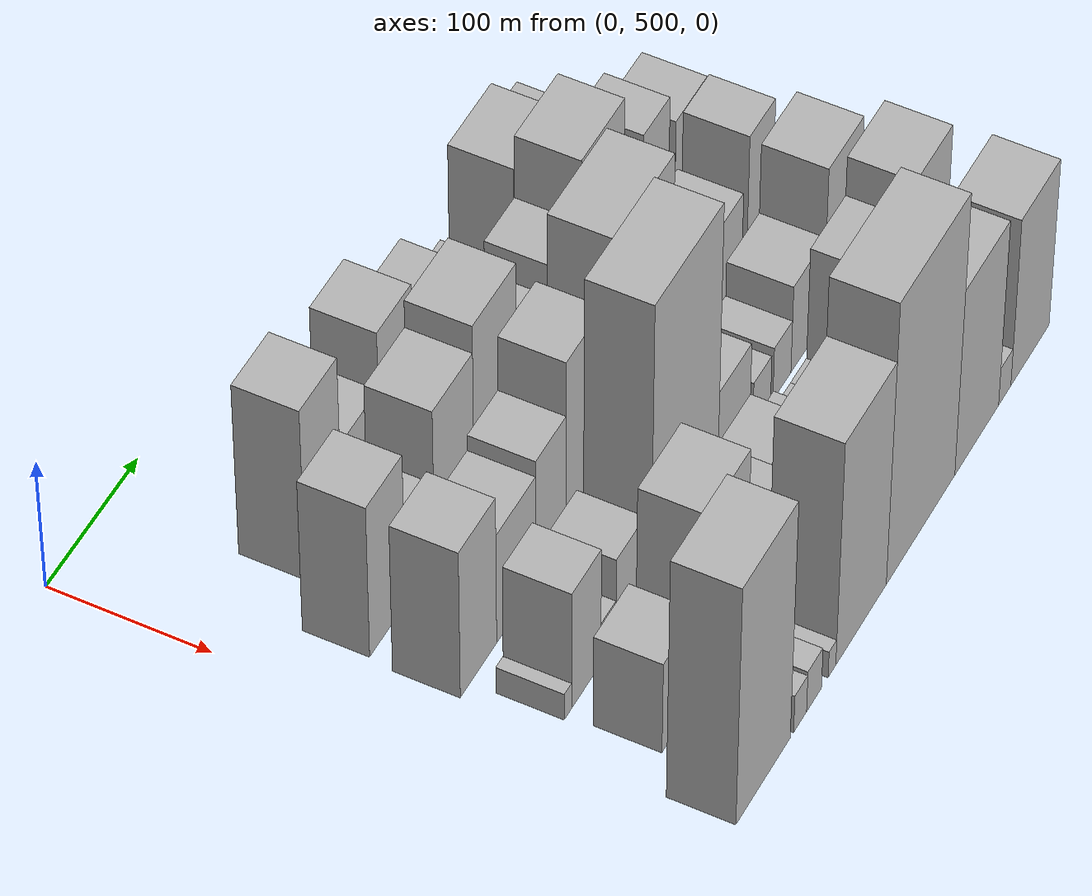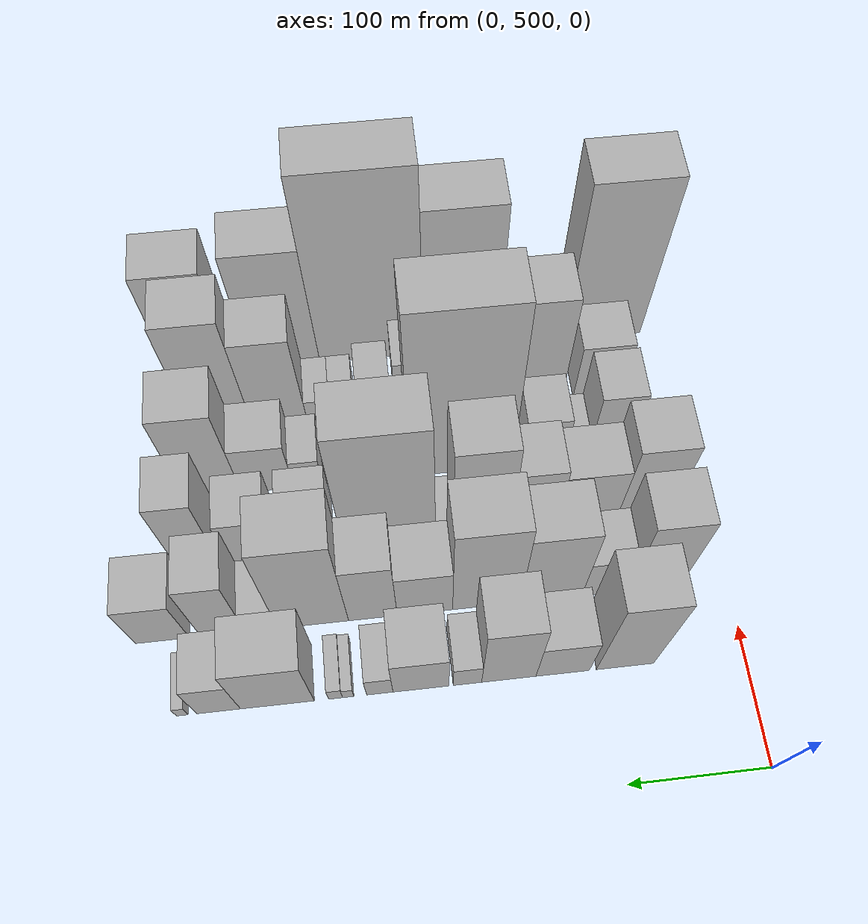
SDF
<sdf version="1.6">
 <world name="default">
  <model name="building_39">
   <static>1</static>
   <pose>100.0000 586.6862 0 0.000000 0.000000 0.000000</pose>
   <link name="link">
    <pose>0 0 67.50 0 0 0</pose>
    <collision name="collision"><geometry><box><size>40.0000 41.3181 135.0000</size></box></geometry></collision>
    <visual name="visual">
     <cast_shadows>0</cast_shadows>
     <geometry><box><size>40.0000 41.3181 135.0000</size></box></geometry>
     <material>
      <script>
       <uri>model://HANNAS_wall/materials/scripts</uri>
       <uri>model://HANNAS_wall/materials/textures</uri>
       <name>vrc/HANNAS_wall</name>
      </script>
     </material>
    </visual>
   </link>
  </model>
  <model name="building_40">
   <static>1</static>
   <pose>100.0000 631.5198 0 0.000000 0.000000 0.000000</pose>
   <link name="link">
    <pose>0 0 33.00 0 0 0</pose>
    <collision name="collision"><geometry><box><size>40.0000 38.3491 66.0000</size></box></geometry></collision>
    <visual name="visual">
     <cast_shadows>0</cast_shadows>
     <geometry><box><size>40.0000 38.3491 66.0000</size></box></geometry>
     <material>
      <script>
       <uri>model://HANNAS_wall/materials/scripts</uri>
       <uri>model://HANNAS_wall/materials/textures</uri>
       <name>vrc/HANNAS_wall</name>
      </script>
     </material>
    </visual>
   </link>
  </model>
  <model name="building_41">
   <static>1</static>
   <pose>100.0000 670.0750 0 0.000000 0.000000 0.000000</pose>
   <link name="link">
    <pose>0 0 55.50 0 0 0</pose>
    <collision name="collision"><geometry><box><size>40.0000 38.7613 111.0000</size></box></geometry></collision>
    <visual name="visual">
     <cast_shadows>0</cast_shadows>
     <geometry><box><size>40.0000 38.7613 111.0000</size></box></geometry>
     <material>
      <script>
       <uri>model://HANNAS_wall/materials/scripts</uri>
       <uri>model://HANNAS_wall/materials/textures</uri>
       <name>vrc/HANNAS_wall</name>
      </script>
     </material>
    </visual>
   </link>
  </model>
  <model name="building_42">
   <static>1</static>
   <pose>100.0000 699.5304 0 0.000000 0.000000 0.000000</pose>
   <link name="link">
    <pose>0 0 19.50 0 0 0</pose>
    <collision name="collision"><geometry><box><size>40.0000 20.1496 39.0000</size></box></geometry></collision>
    <visual name="visual">
     <cast_shadows>0</cast_shadows>
     <geometry><box><size>40.0000 20.1496 39.0000</size></box></geometry>
     <material>
      <script>
       <uri>model://HANNAS_wall/materials/scripts</uri>
       <uri>model://HANNAS_wall/materials/textures</uri>
       <name>vrc/HANNAS_wall</name>
      </script>
     </material>
    </visual>
   </link>
  </model>
  <model name="building_43">
   <static>1</static>
   <pose>100.0000 732.3877 0 0.000000 0.000000 0.000000</pose>
   <link name="link">
    <pose>0 0 33.00 0 0 0</pose>
    <collision name="collision"><geometry><box><size>40.0000 39.5649 66.0000</size></box></geometry></collision>
    <visual name="visual">
     <cast_shadows>0</cast_shadows>
     <geometry><box><size>40.0000 39.5649 66.0000</size></box></geometry>
     <material>
      <script>
       <uri>model://HANNAS_wall/materials/scripts</uri>
       <uri>model://HANNAS_wall/materials/textures</uri>
       <name>vrc/HANNAS_wall</name>
      </script>
     </material>
    </visual>
   </link>
  </model>
  <model name="building_44">
   <static>1</static>
   <pose>100.0000 761.4699 0 0.000000 0.000000 0.000000</pose>
   <link name="link">
    <pose>0 0 18.00 0 0 0</pose>
    <collision name="collision"><geometry><box><size>40.0000 18.5997 36.0000</size></box></geometry></collision>
    <visual name="visual">
     <cast_shadows>0</cast_shadows>
     <geometry><box><size>40.0000 18.5997 36.0000</size></box></geometry>
     <material>
      <script>
       <uri>model://HANNAS_wall/materials/scripts</uri>
       <uri>model://HANNAS_wall/materials/textures</uri>
       <name>vrc/HANNAS_wall</name>
      </script>
     </material>
    </visual>
   </link>
  </model>
  <model name="building_45">
   <static>1</static>
   <pose>100.0000 783.6914 0 0.000000 0.000000 0.000000</pose>
   <link name="link">
    <pose>0 0 9.00 0 0 0</pose>
    <collision name="collision"><geometry><box><size>40.0000 7.8432 18.0000</size></box></geometry></collision>
    <visual name="visual">
     <cast_shadows>0</cast_shadows>
     <geometry><box><size>40.0000 7.8432 18.0000</size></box></geometry>
     <material>
      <script>
       <uri>model://HANNAS_wall/materials/scripts</uri>
       <uri>model://HANNAS_wall/materials/textures</uri>
       <name>vrc/HANNAS_wall</name>
      </script>
     </material>
    </visual>
   </link>
  </model>
  <model name="building_46">
   <static>1</static>
   <pose>100.0000 792.5632 0 0.000000 0.000000 0.000000</pose>
   <link name="link">
    <pose>0 0 10.50 0 0 0</pose>
    <collision name="collision"><geometry><box><size>40.0000 9.9006 21.0000</size></box></geometry></collision>
    <visual name="visual">
     <cast_shadows>0</cast_shadows>
     <geometry><box><size>40.0000 9.9006 21.0000</size></box></geometry>
     <material>
      <script>
       <uri>model://HANNAS_wall/materials/scripts</uri>
       <uri>model://HANNAS_wall/materials/textures</uri>
       <name>vrc/HANNAS_wall</name>
      </script>
     </material>
    </visual>
   </link>
  </model>
  <model name="building_47">
   <static>1</static>
   <pose>100.0000 833.2437 0 0.000000 0.000000 0.000000</pose>
   <link name="link">
    <pose>0 0 43.50 0 0 0</pose>
    <collision name="collision"><geometry><box><size>40.0000 51.4604 87.0000</size></box></geometry></collision>
    <visual name="visual">
     <cast_shadows>0</cast_shadows>
     <geometry><box><size>40.0000 51.4604 87.0000</size></box></geometry>
     <material>
      <script>
       <uri>model://HANNAS_wall/materials/scripts</uri>
       <uri>model://HANNAS_wall/materials/textures</uri>
       <name>vrc/HANNAS_wall</name>
      </script>
     </material>
    </visual>
   </link>
  </model>
  <model name="building_48">
   <static>1</static>
   <pose>100.0000 874.0777 0 0.000000 0.000000 0.000000</pose>
   <link name="link">
    <pose>0 0 30.00 0 0 0</pose>
    <collision name="collision"><geometry><box><size>40.0000 30.2076 60.0000</size></box></geometry></collision>
    <visual name="visual">
     <cast_shadows>0</cast_shadows>
     <geometry><box><size>40.0000 30.2076 60.0000</size></box></geometry>
     <material>
      <script>
       <uri>model://HANNAS_wall/materials/scripts</uri>
       <uri>model://HANNAS_wall/materials/textures</uri>
       <name>vrc/HANNAS_wall</name>
      </script>
     </material>
    </visual>
   </link>
  </model>
  <model name="building_49">
   <static>1</static>
   <pose>100.0000 899.2437 0 0.000000 0.000000 0.000000</pose>
   <link name="link">
    <pose>0 0 9.00 0 0 0</pose>
    <collision name="collision"><geometry><box><size>40.0000 8.1243 18.0000</size></box></geometry></collision>
    <visual name="visual">
     <cast_shadows>0</cast_shadows>
     <geometry><box><size>40.0000 8.1243 18.0000</size></box></geometry>
     <material>
      <script>
       <uri>model://HANNAS_wall/materials/scripts</uri>
       <uri>model://HANNAS_wall/materials/textures</uri>
       <name>vrc/HANNAS_wall</name>
      </script>
     </material>
    </visual>
   </link>
  </model>
  <model name="building_88">
   <static>1</static>
   <pose>155.0000 554.8786 0 0.000000 0.000000 0.000000</pose>
   <link name="link">
    <pose>0 0 60.00 0 0 0</pose>
    <collision name="collision"><geometry><box><size>40.0000 40.1978 120.0000</size></box></geometry></collision>
    <visual name="visual">
     <cast_shadows>0</cast_shadows>
     <geometry><box><size>40.0000 40.1978 120.0000</size></box></geometry>
     <material>
      <script>
       <uri>model://HANNAS_wall/materials/scripts</uri>
       <uri>model://HANNAS_wall/materials/textures</uri>
       <name>vrc/HANNAS_wall</name>
      </script>
     </material>
    </visual>
   </link>
  </model>
  <model name="building_89">
   <static>1</static>
   <pose>155.0000 591.7092 0 0.000000 0.000000 0.000000</pose>
   <link name="link">
    <pose>0 0 31.50 0 0 0</pose>
    <collision name="collision"><geometry><box><size>40.0000 33.4634 63.0000</size></box></geometry></collision>
    <visual name="visual">
     <cast_shadows>0</cast_shadows>
     <geometry><box><size>40.0000 33.4634 63.0000</size></box></geometry>
     <material>
      <script>
       <uri>model://HANNAS_wall/materials/scripts</uri>
       <uri>model://HANNAS_wall/materials/textures</uri>
       <name>vrc/HANNAS_wall</name>
      </script>
     </material>
    </visual>
   </link>
  </model>
  <model name="building_90">
   <static>1</static>
   <pose>155.0000 631.2113 0 0.000000 0.000000 0.000000</pose>
   <link name="link">
    <pose>0 0 60.00 0 0 0</pose>
    <collision name="collision"><geometry><box><size>40.0000 45.5407 120.0000</size></box></geometry></collision>
    <visual name="visual">
     <cast_shadows>0</cast_shadows>
     <geometry><box><size>40.0000 45.5407 120.0000</size></box></geometry>
     <material>
      <script>
       <uri>model://HANNAS_wall/materials/scripts</uri>
       <uri>model://HANNAS_wall/materials/textures</uri>
       <name>vrc/HANNAS_wall</name>
      </script>
     </material>
    </visual>
   </link>
  </model>
  <model name="building_91">
   <static>1</static>
   <pose>155.0000 678.8495 0 0.000000 0.000000 0.000000</pose>
   <link name="link">
    <pose>0 0 70.50 0 0 0</pose>
    <collision name="collision"><geometry><box><size>40.0000 49.7358 141.0000</size></box></geometry></collision>
    <visual name="visual">
     <cast_shadows>0</cast_shadows>
     <geometry><box><size>40.0000 49.7358 141.0000</size></box></geometry>
     <material>
      <script>
       <uri>model://HANNAS_wall/materials/scripts</uri>
       <uri>model://HANNAS_wall/materials/textures</uri>
       <name>vrc/HANNAS_wall</name>
      </script>
     </material>
    </visual>
   </link>
  </model>
  <model name="building_92">
   <static>1</static>
   <pose>155.0000 723.9248 0 0.000000 0.000000 0.000000</pose>
   <link name="link">
    <pose>0 0 37.50 0 0 0</pose>
    <collision name="collision"><geometry><box><size>40.0000 40.4148 75.0000</size></box></geometry></collision>
    <visual name="visual">
     <cast_shadows>0</cast_shadows>
     <geometry><box><size>40.0000 40.4148 75.0000</size></box></geometry>
     <material>
      <script>
       <uri>model://HANNAS_wall/materials/scripts</uri>
       <uri>model://HANNAS_wall/materials/textures</uri>
       <name>vrc/HANNAS_wall</name>
      </script>
     </material>
    </visual>
   </link>
  </model>
  <model name="building_93">
   <static>1</static>
   <pose>155.0000 761.8411 0 0.000000 0.000000 0.000000</pose>
   <link name="link">
    <pose>0 0 49.50 0 0 0</pose>
    <collision name="collision"><geometry><box><size>40.0000 35.4177 99.0000</size></box></geometry></collision>
    <visual name="visual">
     <cast_shadows>0</cast_shadows>
     <geometry><box><size>40.0000 35.4177 99.0000</size></box></geometry>
     <material>
      <script>
       <uri>model://HANNAS_wall/materials/scripts</uri>
       <uri>model://HANNAS_wall/materials/textures</uri>
       <name>vrc/HANNAS_wall</name>
      </script>
     </material>
    </visual>
   </link>
  </model>
  <model name="building_94">
   <static>1</static>
   <pose>155.0000 805.1726 0 0.000000 0.000000 0.000000</pose>
   <link name="link">
    <pose>0 0 73.50 0 0 0</pose>
    <collision name="collision"><geometry><box><size>40.0000 51.2454 147.0000</size></box></geometry></collision>
    <visual name="visual">
     <cast_shadows>0</cast_shadows>
     <geometry><box><size>40.0000 51.2454 147.0000</size></box></geometry>
     <material>
      <script>
       <uri>model://HANNAS_wall/materials/scripts</uri>
       <uri>model://HANNAS_wall/materials/textures</uri>
       <name>vrc/HANNAS_wall</name>
      </script>
     </material>
    </visual>
   </link>
  </model>
  <model name="building_95">
   <static>1</static>
   <pose>155.0000 842.4825 0 0.000000 0.000000 0.000000</pose>
   <link name="link">
    <pose>0 0 19.50 0 0 0</pose>
    <collision name="collision"><geometry><box><size>40.0000 23.3744 39.0000</size></box></geometry></collision>
    <visual name="visual">
     <cast_shadows>0</cast_shadows>
     <geometry><box><size>40.0000 23.3744 39.0000</size></box></geometry>
     <material>
      <script>
       <uri>model://HANNAS_wall/materials/scripts</uri>
       <uri>model://HANNAS_wall/materials/textures</uri>
       <name>vrc/HANNAS_wall</name>
      </script>
     </material>
    </visual>
   </link>
  </model>
  <model name="building_96">
   <static>1</static>
   <pose>155.0000 870.1446 0 0.000000 0.000000 0.000000</pose>
   <link name="link">
    <pose>0 0 48.00 0 0 0</pose>
    <collision name="collision"><geometry><box><size>40.0000 31.9497 96.0000</size></box></geometry></collision>
    <visual name="visual">
     <cast_shadows>0</cast_shadows>
     <geometry><box><size>40.0000 31.9497 96.0000</size></box></geometry>
     <material>
      <script>
       <uri>model://HANNAS_wall/materials/scripts</uri>
       <uri>model://HANNAS_wall/materials/textures</uri>
       <name>vrc/HANNAS_wall</name>
      </script>
     </material>
    </visual>
   </link>
  </model>
  <model name="building_97">
   <static>1</static>
   <pose>155.0000 913.3915 0 0.000000 0.000000 0.000000</pose>
   <link name="link">
    <pose>0 0 34.50 0 0 0</pose>
    <collision name="collision"><geometry><box><size>40.0000 38.5441 69.0000</size></box></geometry></collision>
    <visual name="visual">
     <cast_shadows>0</cast_shadows>
     <geometry><box><size>40.0000 38.5441 69.0000</size></box></geometry>
     <material>
      <script>
       <uri>model://HANNAS_wall/materials/scripts</uri>
       <uri>model://HANNAS_wall/materials/textures</uri>
       <name>vrc/HANNAS_wall</name>
      </script>
     </material>
    </visual>
   </link>
  </model>
  <model name="building_143">
   <static>1</static>
   <pose>210.0000 552.6258 0 0.000000 0.000000 0.000000</pose>
   <link name="link">
    <pose>0 0 58.50 0 0 0</pose>
    <collision name="collision"><geometry><box><size>40.0000 41.3717 117.0000</size></box></geometry></collision>
    <visual name="visual">
     <cast_shadows>0</cast_shadows>
     <geometry><box><size>40.0000 41.3717 117.0000</size></box></geometry>
     <material>
      <script>
       <uri>model://HANNAS_wall/materials/scripts</uri>
       <uri>model://HANNAS_wall/materials/textures</uri>
       <name>vrc/HANNAS_wall</name>
      </script>
     </material>
    </visual>
   </link>
  </model>
  <model name="building_144">
   <static>1</static>
   <pose>210.0000 595.9575 0 0.000000 0.000000 0.000000</pose>
   <link name="link">
    <pose>0 0 43.50 0 0 0</pose>
    <collision name="collision"><geometry><box><size>40.0000 45.2918 87.0000</size></box></geometry></collision>
    <visual name="visual">
     <cast_shadows>0</cast_shadows>
     <geometry><box><size>40.0000 45.2918 87.0000</size></box></geometry>
     <material>
      <script>
       <uri>model://HANNAS_wall/materials/scripts</uri>
       <uri>model://HANNAS_wall/materials/textures</uri>
       <name>vrc/HANNAS_wall</name>
      </script>
     </material>
    </visual>
   </link>
  </model>
  <model name="building_145">
   <static>1</static>
   <pose>210.0000 636.1142 0 0.000000 0.000000 0.000000</pose>
   <link name="link">
    <pose>0 0 49.50 0 0 0</pose>
    <collision name="collision"><geometry><box><size>40.0000 35.0216 99.0000</size></box></geometry></collision>
    <visual name="visual">
     <cast_shadows>0</cast_shadows>
     <geometry><box><size>40.0000 35.0216 99.0000</size></box></geometry>
     <material>
      <script>
       <uri>model://HANNAS_wall/materials/scripts</uri>
       <uri>model://HANNAS_wall/materials/textures</uri>
       <name>vrc/HANNAS_wall</name>
      </script>
     </material>
    </visual>
   </link>
  </model>
  <model name="building_146">
   <static>1</static>
   <pose>210.0000 675.4008 0 0.000000 0.000000 0.000000</pose>
   <link name="link">
    <pose>0 0 70.50 0 0 0</pose>
    <collision name="collision"><geometry><box><size>40.0000 43.5517 141.0000</size></box></geometry></collision>
    <visual name="visual">
     <cast_shadows>0</cast_shadows>
     <geometry><box><size>40.0000 43.5517 141.0000</size></box></geometry>
     <material>
      <script>
       <uri>model://HANNAS_wall/materials/scripts</uri>
       <uri>model://HANNAS_wall/materials/textures</uri>
       <name>vrc/HANNAS_wall</name>
      </script>
     </material>
    </visual>
   </link>
  </model>
  <model name="building_147">
   <static>1</static>
   <pose>210.0000 703.6879 0 0.000000 0.000000 0.000000</pose>
   <link name="link">
    <pose>0 0 13.50 0 0 0</pose>
    <collision name="collision"><geometry><box><size>40.0000 13.0225 27.0000</size></box></geometry></collision>
    <visual name="visual">
     <cast_shadows>0</cast_shadows>
     <geometry><box><size>40.0000 13.0225 27.0000</size></box></geometry>
     <material>
      <script>
       <uri>model://HANNAS_wall/materials/scripts</uri>
       <uri>model://HANNAS_wall/materials/textures</uri>
       <name>vrc/HANNAS_wall</name>
      </script>
     </material>
    </visual>
   </link>
  </model>
  <model name="building_148">
   <static>1</static>
   <pose>210.0000 744.6527 0 0.000000 0.000000 0.000000</pose>
   <link name="link">
    <pose>0 0 90.00 0 0 0</pose>
    <collision name="collision"><geometry><box><size>40.0000 68.9071 180.0000</size></box></geometry></collision>
    <visual name="visual">
     <cast_shadows>0</cast_shadows>
     <geometry><box><size>40.0000 68.9071 180.0000</size></box></geometry>
     <material>
      <script>
       <uri>model://HANNAS_wall/materials/scripts</uri>
       <uri>model://HANNAS_wall/materials/textures</uri>
       <name>vrc/HANNAS_wall</name>
      </script>
     </material>
    </visual>
   </link>
  </model>
  <model name="building_149">
   <static>1</static>
   <pose>210.0000 803.9765 0 0.000000 0.000000 0.000000</pose>
   <link name="link">
    <pose>0 0 33.00 0 0 0</pose>
    <collision name="collision"><geometry><box><size>40.0000 35.7406 66.0000</size></box></geometry></collision>
    <visual name="visual">
     <cast_shadows>0</cast_shadows>
     <geometry><box><size>40.0000 35.7406 66.0000</size></box></geometry>
     <material>
      <script>
       <uri>model://HANNAS_wall/materials/scripts</uri>
       <uri>model://HANNAS_wall/materials/textures</uri>
       <name>vrc/HANNAS_wall</name>
      </script>
     </material>
    </visual>
   </link>
  </model>
  <model name="building_150">
   <static>1</static>
   <pose>210.0000 847.7063 0 0.000000 0.000000 0.000000</pose>
   <link name="link">
    <pose>0 0 33.00 0 0 0</pose>
    <collision name="collision"><geometry><box><size>40.0000 35.7190 66.0000</size></box></geometry></collision>
    <visual name="visual">
     <cast_shadows>0</cast_shadows>
     <geometry><box><size>40.0000 35.7190 66.0000</size></box></geometry>
     <material>
      <script>
       <uri>model://HANNAS_wall/materials/scripts</uri>
       <uri>model://HANNAS_wall/materials/textures</uri>
       <name>vrc/HANNAS_wall</name>
      </script>
     </material>
    </visual>
   </link>
  </model>
  <model name="building_151">
   <static>1</static>
   <pose>210.0000 887.4207 0 0.000000 0.000000 0.000000</pose>
   <link name="link">
    <pose>0 0 52.50 0 0 0</pose>
    <collision name="collision"><geometry><box><size>40.0000 31.7098 105.0000</size></box></geometry></collision>
    <visual name="visual">
     <cast_shadows>0</cast_shadows>
     <geometry><box><size>40.0000 31.7098 105.0000</size></box></geometry>
     <material>
      <script>
       <uri>model://HANNAS_wall/materials/scripts</uri>
       <uri>model://HANNAS_wall/materials/textures</uri>
       <name>vrc/HANNAS_wall</name>
      </script>
     </material>
    </visual>
   </link>
  </model>
  <model name="building_192">
   <static>1</static>
   <pose>265.0000 547.5838 0 0.000000 0.000000 0.000000</pose>
   <link name="link">
    <pose>0 0 10.50 0 0 0</pose>
    <collision name="collision"><geometry><box><size>40.0000 8.4005 21.0000</size></box></geometry></collision>
    <visual name="visual">
     <cast_shadows>0</cast_shadows>
     <geometry><box><size>40.0000 8.4005 21.0000</size></box></geometry>
     <material>
      <script>
       <uri>model://HANNAS_wall/materials/scripts</uri>
       <uri>model://HANNAS_wall/materials/textures</uri>
       <name>vrc/HANNAS_wall</name>
      </script>
     </material>
    </visual>
   </link>
  </model>
  <model name="building_193">
   <static>1</static>
   <pose>265.0000 568.6463 0 0.000000 0.000000 0.000000</pose>
   <link name="link">
    <pose>0 0 46.50 0 0 0</pose>
    <collision name="collision"><geometry><box><size>40.0000 33.7244 93.0000</size></box></geometry></collision>
    <visual name="visual">
     <cast_shadows>0</cast_shadows>
     <geometry><box><size>40.0000 33.7244 93.0000</size></box></geometry>
     <material>
      <script>
       <uri>model://HANNAS_wall/materials/scripts</uri>
       <uri>model://HANNAS_wall/materials/textures</uri>
       <name>vrc/HANNAS_wall</name>
      </script>
     </material>
    </visual>
   </link>
  </model>
  <model name="building_194">
   <static>1</static>
   <pose>265.0000 594.2156 0 0.000000 0.000000 0.000000</pose>
   <link name="link">
    <pose>0 0 16.50 0 0 0</pose>
    <collision name="collision"><geometry><box><size>40.0000 17.4142 33.0000</size></box></geometry></collision>
    <visual name="visual">
     <cast_shadows>0</cast_shadows>
     <geometry><box><size>40.0000 17.4142 33.0000</size></box></geometry>
     <material>
      <script>
       <uri>model://HANNAS_wall/materials/scripts</uri>
       <uri>model://HANNAS_wall/materials/textures</uri>
       <name>vrc/HANNAS_wall</name>
      </script>
     </material>
    </visual>
   </link>
  </model>
  <model name="building_195">
   <static>1</static>
   <pose>265.0000 619.6347 0 0.000000 0.000000 0.000000</pose>
   <link name="link">
    <pose>0 0 33.00 0 0 0</pose>
    <collision name="collision"><geometry><box><size>40.0000 33.4239 66.0000</size></box></geometry></collision>
    <visual name="visual">
     <cast_shadows>0</cast_shadows>
     <geometry><box><size>40.0000 33.4239 66.0000</size></box></geometry>
     <material>
      <script>
       <uri>model://HANNAS_wall/materials/scripts</uri>
       <uri>model://HANNAS_wall/materials/textures</uri>
       <name>vrc/HANNAS_wall</name>
      </script>
     </material>
    </visual>
   </link>
  </model>
  <model name="building_196">
   <static>1</static>
   <pose>265.0000 684.1215 0 0.000000 0.000000 0.000000</pose>
   <link name="link">
    <pose>0 0 111.00 0 0 0</pose>
    <collision name="collision"><geometry><box><size>40.0000 79.5496 222.0000</size></box></geometry></collision>
    <visual name="visual">
     <cast_shadows>0</cast_shadows>
     <geometry><box><size>40.0000 79.5496 222.0000</size></box></geometry>
     <material>
      <script>
       <uri>model://HANNAS_wall/materials/scripts</uri>
       <uri>model://HANNAS_wall/materials/textures</uri>
       <name>vrc/HANNAS_wall</name>
      </script>
     </material>
    </visual>
   </link>
  </model>
  <model name="building_197">
   <static>1</static>
   <pose>265.0000 743.2480 0 0.000000 0.000000 0.000000</pose>
   <link name="link">
    <pose>0 0 37.50 0 0 0</pose>
    <collision name="collision"><geometry><box><size>40.0000 38.7034 75.0000</size></box></geometry></collision>
    <visual name="visual">
     <cast_shadows>0</cast_shadows>
     <geometry><box><size>40.0000 38.7034 75.0000</size></box></geometry>
     <material>
      <script>
       <uri>model://HANNAS_wall/materials/scripts</uri>
       <uri>model://HANNAS_wall/materials/textures</uri>
       <name>vrc/HANNAS_wall</name>
      </script>
     </material>
    </visual>
   </link>
  </model>
  <model name="building_198">
   <static>1</static>
   <pose>265.0000 777.5946 0 0.000000 0.000000 0.000000</pose>
   <link name="link">
    <pose>0 0 19.50 0 0 0</pose>
    <collision name="collision"><geometry><box><size>40.0000 21.9898 39.0000</size></box></geometry></collision>
    <visual name="visual">
     <cast_shadows>0</cast_shadows>
     <geometry><box><size>40.0000 21.9898 39.0000</size></box></geometry>
     <material>
      <script>
       <uri>model://HANNAS_wall/materials/scripts</uri>
       <uri>model://HANNAS_wall/materials/textures</uri>
       <name>vrc/HANNAS_wall</name>
      </script>
     </material>
    </visual>
   </link>
  </model>
  <model name="building_199">
   <static>1</static>
   <pose>265.0000 802.7274 0 0.000000 0.000000 0.000000</pose>
   <link name="link">
    <pose>0 0 21.00 0 0 0</pose>
    <collision name="collision"><geometry><box><size>40.0000 22.2757 42.0000</size></box></geometry></collision>
    <visual name="visual">
     <cast_shadows>0</cast_shadows>
     <geometry><box><size>40.0000 22.2757 42.0000</size></box></geometry>
     <material>
      <script>
       <uri>model://HANNAS_wall/materials/scripts</uri>
       <uri>model://HANNAS_wall/materials/textures</uri>
       <name>vrc/HANNAS_wall</name>
      </script>
     </material>
    </visual>
   </link>
  </model>
  <model name="building_200">
   <static>1</static>
   <pose>265.0000 833.9446 0 0.000000 0.000000 0.000000</pose>
   <link name="link">
    <pose>0 0 34.50 0 0 0</pose>
    <collision name="collision"><geometry><box><size>40.0000 40.1587 69.0000</size></box></geometry></collision>
    <visual name="visual">
     <cast_shadows>0</cast_shadows>
     <geometry><box><size>40.0000 40.1587 69.0000</size></box></geometry>
     <material>
      <script>
       <uri>model://HANNAS_wall/materials/scripts</uri>
       <uri>model://HANNAS_wall/materials/textures</uri>
       <name>vrc/HANNAS_wall</name>
      </script>
     </material>
    </visual>
   </link>
  </model>
  <model name="building_201">
   <static>1</static>
   <pose>265.0000 875.7766 0 0.000000 0.000000 0.000000</pose>
   <link name="link">
    <pose>0 0 61.50 0 0 0</pose>
    <collision name="collision"><geometry><box><size>40.0000 43.5054 123.0000</size></box></geometry></collision>
    <visual name="visual">
     <cast_shadows>0</cast_shadows>
     <geometry><box><size>40.0000 43.5054 123.0000</size></box></geometry>
     <material>
      <script>
       <uri>model://HANNAS_wall/materials/scripts</uri>
       <uri>model://HANNAS_wall/materials/textures</uri>
       <name>vrc/HANNAS_wall</name>
      </script>
     </material>
    </visual>
   </link>
  </model>
  <model name="building_241">
   <static>1</static>
   <pose>320.0000 567.0464 0 0.000000 0.000000 0.000000</pose>
   <link name="link">
    <pose>0 0 36.00 0 0 0</pose>
    <collision name="collision"><geometry><box><size>40.0000 40.3364 72.0000</size></box></geometry></collision>
    <visual name="visual">
     <cast_shadows>0</cast_shadows>
     <geometry><box><size>40.0000 40.3364 72.0000</size></box></geometry>
     <material>
      <script>
       <uri>model://HANNAS_wall/materials/scripts</uri>
       <uri>model://HANNAS_wall/materials/textures</uri>
       <name>vrc/HANNAS_wall</name>
      </script>
     </material>
    </visual>
   </link>
  </model>
  <model name="building_242">
   <static>1</static>
   <pose>320.0000 621.2566 0 0.000000 0.000000 0.000000</pose>
   <link name="link">
    <pose>0 0 69.00 0 0 0</pose>
    <collision name="collision"><geometry><box><size>40.0000 50.0840 138.0000</size></box></geometry></collision>
    <visual name="visual">
     <cast_shadows>0</cast_shadows>
     <geometry><box><size>40.0000 50.0840 138.0000</size></box></geometry>
     <material>
      <script>
       <uri>model://HANNAS_wall/materials/scripts</uri>
       <uri>model://HANNAS_wall/materials/textures</uri>
       <name>vrc/HANNAS_wall</name>
      </script>
     </material>
    </visual>
   </link>
  </model>
  <model name="building_243">
   <static>1</static>
   <pose>320.0000 670.2923 0 0.000000 0.000000 0.000000</pose>
   <link name="link">
    <pose>0 0 37.50 0 0 0</pose>
    <collision name="collision"><geometry><box><size>40.0000 41.9875 75.0000</size></box></geometry></collision>
    <visual name="visual">
     <cast_shadows>0</cast_shadows>
     <geometry><box><size>40.0000 41.9875 75.0000</size></box></geometry>
     <material>
      <script>
       <uri>model://HANNAS_wall/materials/scripts</uri>
       <uri>model://HANNAS_wall/materials/textures</uri>
       <name>vrc/HANNAS_wall</name>
      </script>
     </material>
    </visual>
   </link>
  </model>
  <model name="building_244">
   <static>1</static>
   <pose>320.0000 710.7968 0 0.000000 0.000000 0.000000</pose>
   <link name="link">
    <pose>0 0 37.50 0 0 0</pose>
    <collision name="collision"><geometry><box><size>40.0000 39.0213 75.0000</size></box></geometry></collision>
    <visual name="visual">
     <cast_shadows>0</cast_shadows>
     <geometry><box><size>40.0000 39.0213 75.0000</size></box></geometry>
     <material>
      <script>
       <uri>model://HANNAS_wall/materials/scripts</uri>
       <uri>model://HANNAS_wall/materials/textures</uri>
       <name>vrc/HANNAS_wall</name>
      </script>
     </material>
    </visual>
   </link>
  </model>
  <model name="building_245">
   <static>1</static>
   <pose>320.0000 746.3704 0 0.000000 0.000000 0.000000</pose>
   <link name="link">
    <pose>0 0 24.00 0 0 0</pose>
    <collision name="collision"><geometry><box><size>40.0000 26.1260 48.0000</size></box></geometry></collision>
    <visual name="visual">
     <cast_shadows>0</cast_shadows>
     <geometry><box><size>40.0000 26.1260 48.0000</size></box></geometry>
     <material>
      <script>
       <uri>model://HANNAS_wall/materials/scripts</uri>
       <uri>model://HANNAS_wall/materials/textures</uri>
       <name>vrc/HANNAS_wall</name>
      </script>
     </material>
    </visual>
   </link>
  </model>
  <model name="building_246">
   <static>1</static>
   <pose>320.0000 771.7005 0 0.000000 0.000000 0.000000</pose>
   <link name="link">
    <pose>0 0 16.50 0 0 0</pose>
    <collision name="collision"><geometry><box><size>40.0000 18.5342 33.0000</size></box></geometry></collision>
    <visual name="visual">
     <cast_shadows>0</cast_shadows>
     <geometry><box><size>40.0000 18.5342 33.0000</size></box></geometry>
     <material>
      <script>
       <uri>model://HANNAS_wall/materials/scripts</uri>
       <uri>model://HANNAS_wall/materials/textures</uri>
       <name>vrc/HANNAS_wall</name>
      </script>
     </material>
    </visual>
   </link>
  </model>
  <model name="building_247">
   <static>1</static>
   <pose>320.0000 790.7148 0 0.000000 0.000000 0.000000</pose>
   <link name="link">
    <pose>0 0 16.50 0 0 0</pose>
    <collision name="collision"><geometry><box><size>40.0000 19.4943 33.0000</size></box></geometry></collision>
    <visual name="visual">
     <cast_shadows>0</cast_shadows>
     <geometry><box><size>40.0000 19.4943 33.0000</size></box></geometry>
     <material>
      <script>
       <uri>model://HANNAS_wall/materials/scripts</uri>
       <uri>model://HANNAS_wall/materials/textures</uri>
       <name>vrc/HANNAS_wall</name>
      </script>
     </material>
    </visual>
   </link>
  </model>
  <model name="building_248">
   <static>1</static>
   <pose>320.0000 821.9661 0 0.000000 0.000000 0.000000</pose>
   <link name="link">
    <pose>0 0 60.00 0 0 0</pose>
    <collision name="collision"><geometry><box><size>40.0000 43.0082 120.0000</size></box></geometry></collision>
    <visual name="visual">
     <cast_shadows>0</cast_shadows>
     <geometry><box><size>40.0000 43.0082 120.0000</size></box></geometry>
     <material>
      <script>
       <uri>model://HANNAS_wall/materials/scripts</uri>
       <uri>model://HANNAS_wall/materials/textures</uri>
       <name>vrc/HANNAS_wall</name>
      </script>
     </material>
    </visual>
   </link>
  </model>
  <model name="building_249">
   <static>1</static>
   <pose>320.0000 866.5378 0 0.000000 0.000000 0.000000</pose>
   <link name="link">
    <pose>0 0 75.00 0 0 0</pose>
    <collision name="collision"><geometry><box><size>40.0000 46.1353 150.0000</size></box></geometry></collision>
    <visual name="visual">
     <cast_shadows>0</cast_shadows>
     <geometry><box><size>40.0000 46.1353 150.0000</size></box></geometry>
     <material>
      <script>
       <uri>model://HANNAS_wall/materials/scripts</uri>
       <uri>model://HANNAS_wall/materials/textures</uri>
       <name>vrc/HANNAS_wall</name>
      </script>
     </material>
    </visual>
   </link>
  </model>
  <model name="building_250">
   <static>1</static>
   <pose>320.0000 898.6139 0 0.000000 0.000000 0.000000</pose>
   <link name="link">
    <pose>0 0 18.00 0 0 0</pose>
    <collision name="collision"><geometry><box><size>40.0000 18.0168 36.0000</size></box></geometry></collision>
    <visual name="visual">
     <cast_shadows>0</cast_shadows>
     <geometry><box><size>40.0000 18.0168 36.0000</size></box></geometry>
     <material>
      <script>
       <uri>model://HANNAS_wall/materials/scripts</uri>
       <uri>model://HANNAS_wall/materials/textures</uri>
       <name>vrc/HANNAS_wall</name>
      </script>
     </material>
    </visual>
   </link>
  </model>
  <model name="building_288">
   <static>1</static>
   <pose>375.0000 553.7827 0 0.000000 0.000000 0.000000</pose>
   <link name="link">
    <pose>0 0 94.50 0 0 0</pose>
    <collision name="collision"><geometry><box><size>40.0000 64.0944 189.0000</size></box></geometry></collision>
    <visual name="visual">
     <cast_shadows>0</cast_shadows>
     <geometry><box><size>40.0000 64.0944 189.0000</size></box></geometry>
     <material>
      <script>
       <uri>model://HANNAS_wall/materials/scripts</uri>
       <uri>model://HANNAS_wall/materials/textures</uri>
       <name>vrc/HANNAS_wall</name>
      </script>
     </material>
    </visual>
   </link>
  </model>
  <model name="building_289">
   <static>1</static>
   <pose>375.0000 597.5572 0 0.000000 0.000000 0.000000</pose>
   <link name="link">
    <pose>0 0 15.00 0 0 0</pose>
    <collision name="collision"><geometry><box><size>40.0000 15.4546 30.0000</size></box></geometry></collision>
    <visual name="visual">
     <cast_shadows>0</cast_shadows>
     <geometry><box><size>40.0000 15.4546 30.0000</size></box></geometry>
     <material>
      <script>
       <uri>model://HANNAS_wall/materials/scripts</uri>
       <uri>model://HANNAS_wall/materials/textures</uri>
       <name>vrc/HANNAS_wall</name>
      </script>
     </material>
    </visual>
   </link>
  </model>
  <model name="building_290">
   <static>1</static>
   <pose>375.0000 614.2440 0 0.000000 0.000000 0.000000</pose>
   <link name="link">
    <pose>0 0 16.50 0 0 0</pose>
    <collision name="collision"><geometry><box><size>40.0000 17.9191 33.0000</size></box></geometry></collision>
    <visual name="visual">
     <cast_shadows>0</cast_shadows>
     <geometry><box><size>40.0000 17.9191 33.0000</size></box></geometry>
     <material>
      <script>
       <uri>model://HANNAS_wall/materials/scripts</uri>
       <uri>model://HANNAS_wall/materials/textures</uri>
       <name>vrc/HANNAS_wall</name>
      </script>
     </material>
    </visual>
   </link>
  </model>
  <model name="building_291">
   <static>1</static>
   <pose>375.0000 635.8553 0 0.000000 0.000000 0.000000</pose>
   <link name="link">
    <pose>0 0 10.50 0 0 0</pose>
    <collision name="collision"><geometry><box><size>40.0000 9.3035 21.0000</size></box></geometry></collision>
    <visual name="visual">
     <cast_shadows>0</cast_shadows>
     <geometry><box><size>40.0000 9.3035 21.0000</size></box></geometry>
     <material>
      <script>
       <uri>model://HANNAS_wall/materials/scripts</uri>
       <uri>model://HANNAS_wall/materials/textures</uri>
       <name>vrc/HANNAS_wall</name>
      </script>
     </material>
    </visual>
   </link>
  </model>
  <model name="building_292">
   <static>1</static>
   <pose>375.0000 671.3485 0 0.000000 0.000000 0.000000</pose>
   <link name="link">
    <pose>0 0 88.50 0 0 0</pose>
    <collision name="collision"><geometry><box><size>40.0000 61.6830 177.0000</size></box></geometry></collision>
    <visual name="visual">
     <cast_shadows>0</cast_shadows>
     <geometry><box><size>40.0000 61.6830 177.0000</size></box></geometry>
     <material>
      <script>
       <uri>model://HANNAS_wall/materials/scripts</uri>
       <uri>model://HANNAS_wall/materials/textures</uri>
       <name>vrc/HANNAS_wall</name>
      </script>
     </material>
    </visual>
   </link>
  </model>
  <model name="building_293">
   <static>1</static>
   <pose>375.0000 744.9251 0 0.000000 0.000000 0.000000</pose>
   <link name="link">
    <pose>0 0 111.00 0 0 0</pose>
    <collision name="collision"><geometry><box><size>40.0000 85.4702 222.0000</size></box></geometry></collision>
    <visual name="visual">
     <cast_shadows>0</cast_shadows>
     <geometry><box><size>40.0000 85.4702 222.0000</size></box></geometry>
     <material>
      <script>
       <uri>model://HANNAS_wall/materials/scripts</uri>
       <uri>model://HANNAS_wall/materials/textures</uri>
       <name>vrc/HANNAS_wall</name>
      </script>
     </material>
    </visual>
   </link>
  </model>
  <model name="building_294">
   <static>1</static>
   <pose>375.0000 815.5393 0 0.000000 0.000000 0.000000</pose>
   <link name="link">
    <pose>0 0 73.50 0 0 0</pose>
    <collision name="collision"><geometry><box><size>40.0000 55.7581 147.0000</size></box></geometry></collision>
    <visual name="visual">
     <cast_shadows>0</cast_shadows>
     <geometry><box><size>40.0000 55.7581 147.0000</size></box></geometry>
     <material>
      <script>
       <uri>model://HANNAS_wall/materials/scripts</uri>
       <uri>model://HANNAS_wall/materials/textures</uri>
       <name>vrc/HANNAS_wall</name>
      </script>
     </material>
    </visual>
   </link>
  </model>
  <model name="building_295">
   <static>1</static>
   <pose>375.0000 851.2962 0 0.000000 0.000000 0.000000</pose>
   <link name="link">
    <pose>0 0 15.00 0 0 0</pose>
    <collision name="collision"><geometry><box><size>40.0000 15.7558 30.0000</size></box></geometry></collision>
    <visual name="visual">
     <cast_shadows>0</cast_shadows>
     <geometry><box><size>40.0000 15.7558 30.0000</size></box></geometry>
     <material>
      <script>
       <uri>model://HANNAS_wall/materials/scripts</uri>
       <uri>model://HANNAS_wall/materials/textures</uri>
       <name>vrc/HANNAS_wall</name>
      </script>
     </material>
    </visual>
   </link>
  </model>
  <model name="building_296">
   <static>1</static>
   <pose>375.0000 883.9474 0 0.000000 0.000000 0.000000</pose>
   <link name="link">
    <pose>0 0 66.00 0 0 0</pose>
    <collision name="collision"><geometry><box><size>40.0000 49.5465 132.0000</size></box></geometry></collision>
    <visual name="visual">
     <cast_shadows>0</cast_shadows>
     <geometry><box><size>40.0000 49.5465 132.0000</size></box></geometry>
     <material>
      <script>
       <uri>model://HANNAS_wall/materials/scripts</uri>
       <uri>model://HANNAS_wall/materials/textures</uri>
       <name>vrc/HANNAS_wall</name>
      </script>
     </material>
    </visual>
   </link>
  </model>
 </world>
</sdf>
